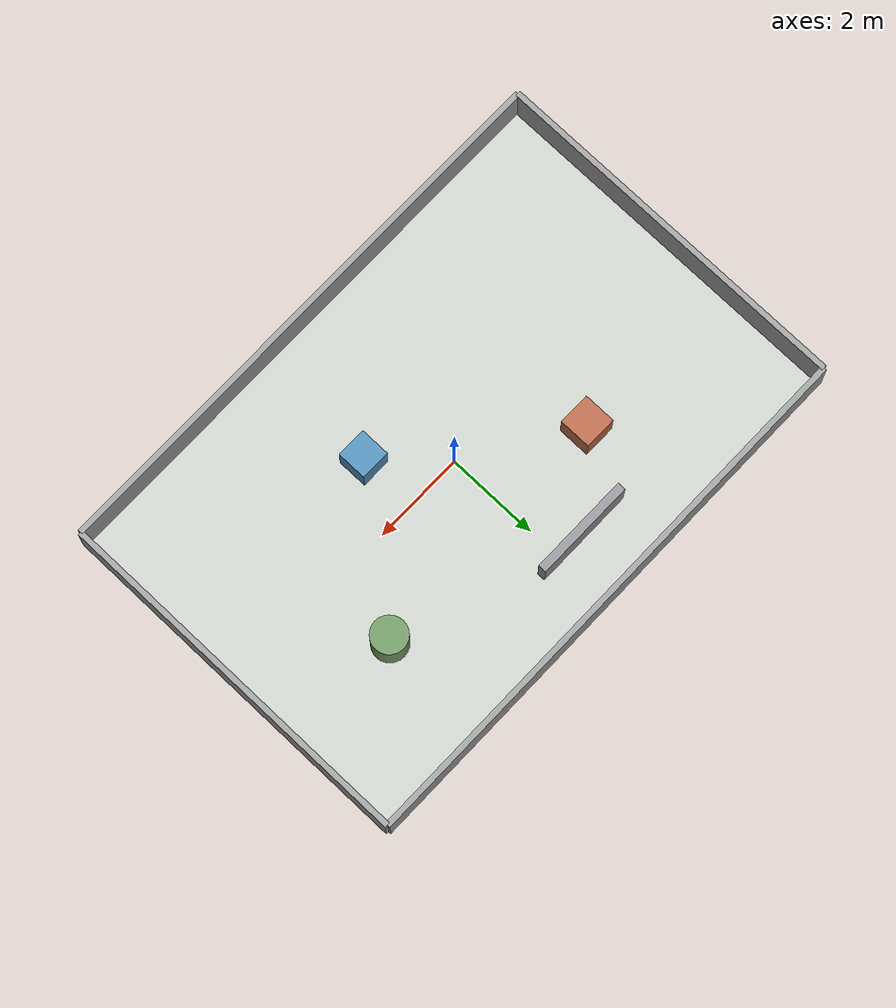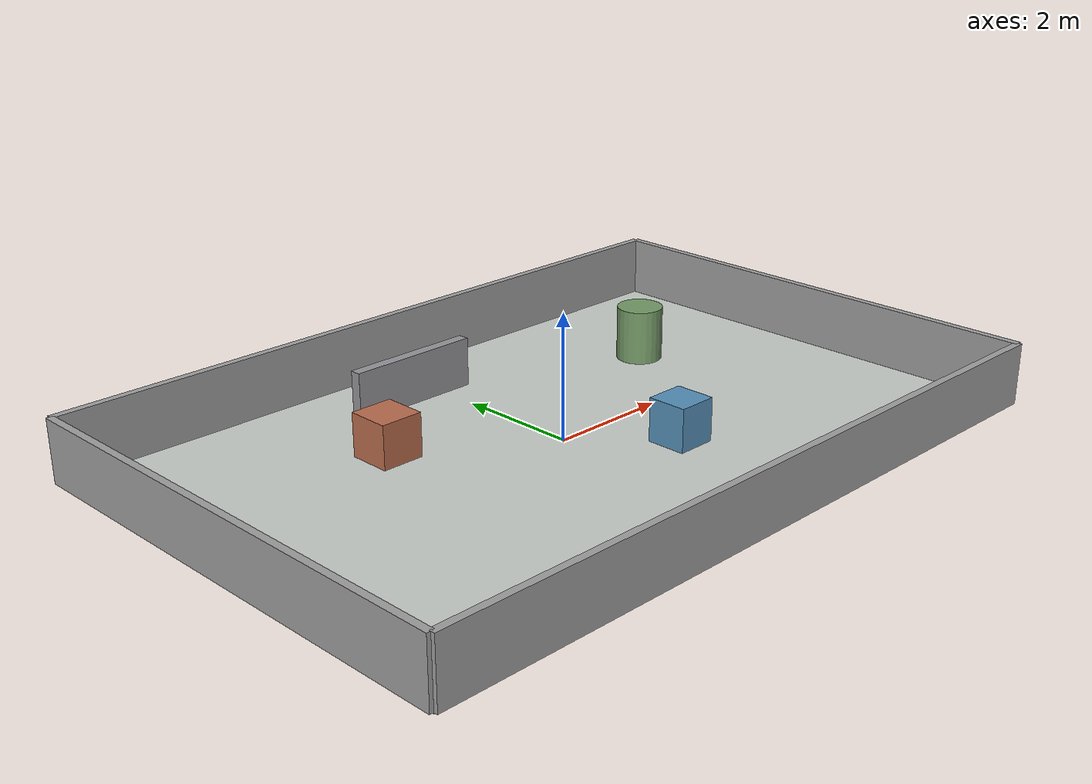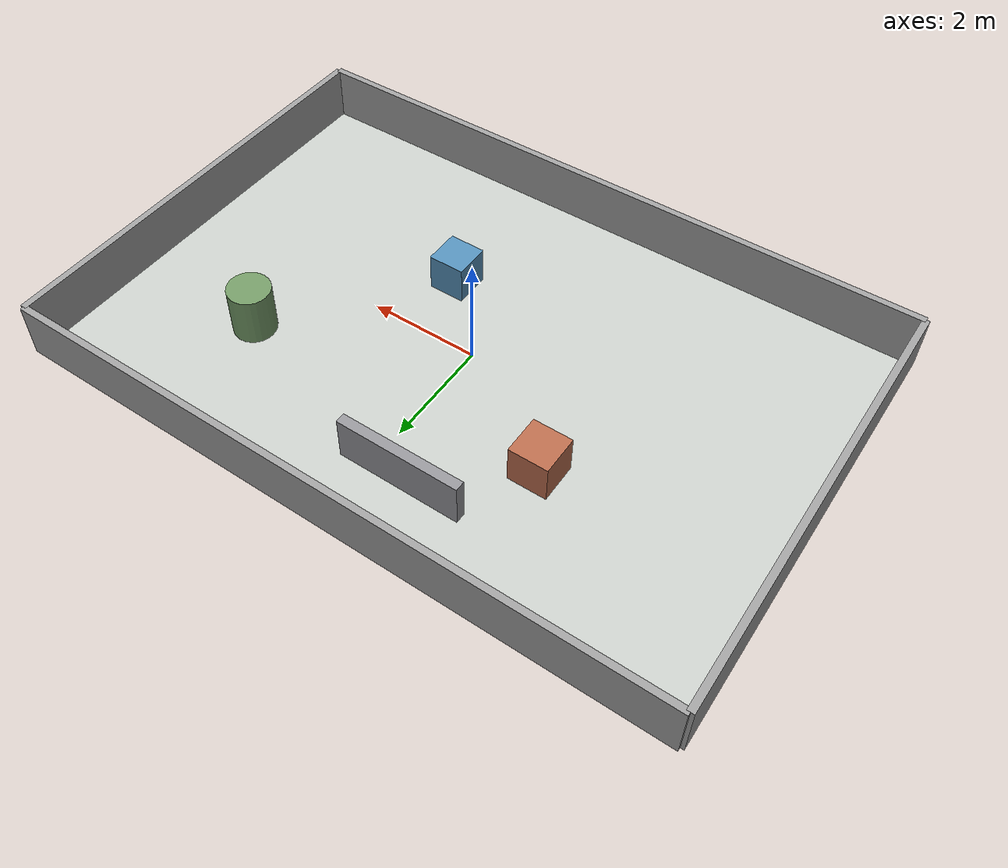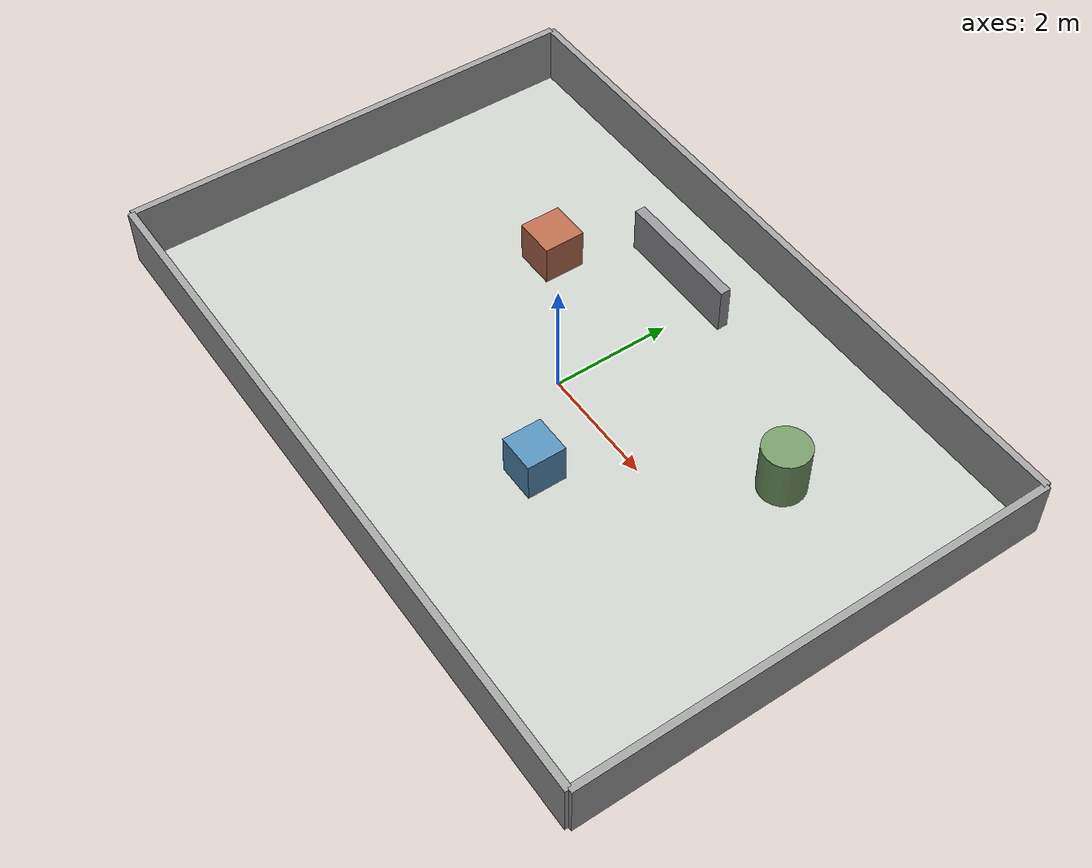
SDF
<sdf version='1.10'>
  <world name='empty'>
    <physics name='1ms' type='ignored'>
      <max_step_size>0.001</max_step_size>
      <real_time_factor>1</real_time_factor>
      <real_time_update_rate>1000</real_time_update_rate>
    </physics>

    <plugin name='gz::sim::systems::Physics' filename='gz-sim-physics-system'/>
    <plugin name='gz::sim::systems::UserCommands' filename='gz-sim-user-commands-system'/>
    <plugin name='gz::sim::systems::SceneBroadcaster' filename='gz-sim-scene-broadcaster-system'/>
    <plugin name='gz::sim::systems::Sensors' filename='gz-sim-sensors-system'>
      <render_engine>ogre2</render_engine>
    </plugin>
    <plugin name='gz::sim::systems::Imu' filename='gz-sim-imu-system'/>
    <plugin name='gz::sim::systems::Contact' filename='gz-sim-contact-system'/>

    <gravity>0 0 -9.8</gravity>
    <magnetic_field>5.56e-06 2.29e-05 -4.24e-05</magnetic_field>
    <atmosphere type='adiabatic'/>
    <scene>
      <ambient>0.45 0.45 0.45 1</ambient>
      <background>0.72 0.74 0.76 1</background>
      <shadows>true</shadows>
    </scene>

    <light name='sun' type='directional'>
      <pose>0 0 10 0 0 0</pose>
      <cast_shadows>true</cast_shadows>
      <intensity>1</intensity>
      <direction>-0.5 0.1 -0.9</direction>
      <diffuse>0.8 0.8 0.8 1</diffuse>
      <specular>0.2 0.2 0.2 1</specular>
      <attenuation>
        <range>1000</range>
        <constant>0.9</constant>
        <linear>0.01</linear>
        <quadratic>0.001</quadratic>
      </attenuation>
    </light>

    <model name='ground_plane'>
      <static>true</static>
      <link name='link'>
        <collision name='collision'>
          <geometry>
            <box><size>12 8 0.02</size></box>
          </geometry>
          <pose>0 0 -0.01 0 0 0</pose>
          <surface>
            <friction>
              <ode><mu>50</mu><mu2>50</mu2></ode>
            </friction>
          </surface>
        </collision>
        <visual name='visual'>
          <geometry>
            <box><size>12 8 0.02</size></box>
          </geometry>
          <pose>0 0 -0.01 0 0 0</pose>
          <material>
            <ambient>0.78 0.80 0.78 1</ambient>
            <diffuse>0.78 0.80 0.78 1</diffuse>
            <specular>0.1 0.1 0.1 1</specular>
          </material>
        </visual>
      </link>
    </model>

    <model name='wall_east'>
      <static>true</static>
      <pose>6 0 0.5 0 0 0</pose>
      <link name='link'>
        <collision name='collision'><geometry><box><size>0.12 8 1.0</size></box></geometry></collision>
        <visual name='visual'><geometry><box><size>0.12 8 1.0</size></box></geometry><material><ambient>0.55 0.55 0.55 1</ambient><diffuse>0.62 0.62 0.62 1</diffuse></material></visual>
      </link>
    </model>

    <model name='wall_west'>
      <static>true</static>
      <pose>-6 0 0.5 0 0 0</pose>
      <link name='link'>
        <collision name='collision'><geometry><box><size>0.12 8 1.0</size></box></geometry></collision>
        <visual name='visual'><geometry><box><size>0.12 8 1.0</size></box></geometry><material><ambient>0.55 0.55 0.55 1</ambient><diffuse>0.62 0.62 0.62 1</diffuse></material></visual>
      </link>
    </model>

    <model name='wall_north'>
      <static>true</static>
      <pose>0 4 0.5 0 0 0</pose>
      <link name='link'>
        <collision name='collision'><geometry><box><size>12 0.12 1.0</size></box></geometry></collision>
        <visual name='visual'><geometry><box><size>12 0.12 1.0</size></box></geometry><material><ambient>0.55 0.55 0.55 1</ambient><diffuse>0.62 0.62 0.62 1</diffuse></material></visual>
      </link>
    </model>

    <model name='wall_south'>
      <static>true</static>
      <pose>0 -4 0.5 0 0 0</pose>
      <link name='link'>
        <collision name='collision'><geometry><box><size>12 0.12 1.0</size></box></geometry></collision>
        <visual name='visual'><geometry><box><size>12 0.12 1.0</size></box></geometry><material><ambient>0.55 0.55 0.55 1</ambient><diffuse>0.62 0.62 0.62 1</diffuse></material></visual>
      </link>
    </model>

    <model name='obstacle_block_1'>
      <static>true</static>
      <pose>-2.2 1.4 0.35 0 0 0</pose>
      <link name='link'>
        <collision name='collision'><geometry><box><size>0.7 0.7 0.7</size></box></geometry></collision>
        <visual name='visual'><geometry><box><size>0.7 0.7 0.7</size></box></geometry><material><ambient>0.65 0.36 0.26 1</ambient><diffuse>0.72 0.42 0.30 1</diffuse></material></visual>
      </link>
    </model>

    <model name='obstacle_block_2'>
      <static>true</static>
      <pose>1.2 -1.25 0.35 0 0 0</pose>
      <link name='link'>
        <collision name='collision'><geometry><box><size>0.65 0.65 0.7</size></box></geometry></collision>
        <visual name='visual'><geometry><box><size>0.65 0.65 0.7</size></box></geometry><material><ambient>0.28 0.48 0.62 1</ambient><diffuse>0.33 0.56 0.72 1</diffuse></material></visual>
      </link>
    </model>

    <model name='obstacle_column'>
      <static>true</static>
      <pose>3.4 1.55 0.45 0 0 0</pose>
      <link name='link'>
        <collision name='collision'><geometry><cylinder><radius>0.38</radius><length>0.9</length></cylinder></geometry></collision>
        <visual name='visual'><geometry><cylinder><radius>0.38</radius><length>0.9</length></cylinder></geometry><material><ambient>0.38 0.50 0.34 1</ambient><diffuse>0.45 0.60 0.40 1</diffuse></material></visual>
      </link>
    </model>

    <model name='short_partition'>
      <static>true</static>
      <pose>-0.6 2.75 0.4 0 0 0</pose>
      <link name='link'>
        <collision name='collision'><geometry><box><size>2.2 0.18 0.8</size></box></geometry></collision>
        <visual name='visual'><geometry><box><size>2.2 0.18 0.8</size></box></geometry><material><ambient>0.50 0.50 0.52 1</ambient><diffuse>0.58 0.58 0.60 1</diffuse></material></visual>
      </link>
    </model>
  </world>
</sdf>
